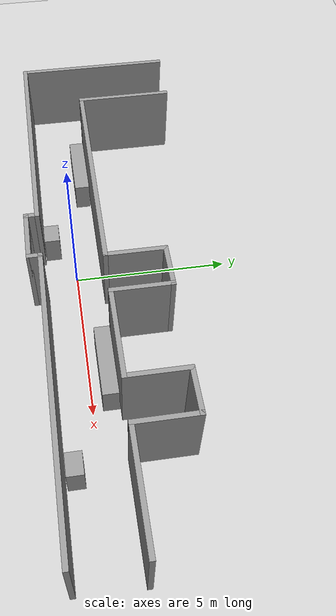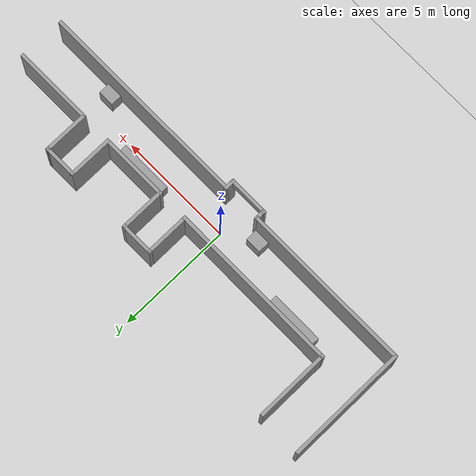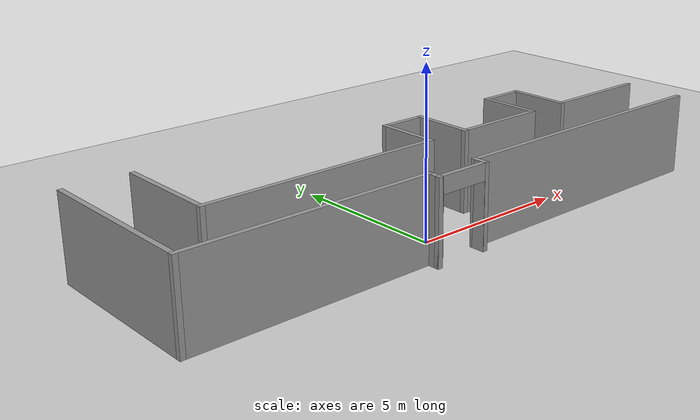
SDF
<sdf version="1.6">
 <world name="default">
  <light name="sun" type="directional">
   <pose>0 0 10 0 -0 0</pose>
   <diffuse>0.8 0.8 0.8 1</diffuse>
   <specular>0.2 0.2 0.2 1</specular>
   <attenuation>
    <range>1000</range>
    <constant>0.9</constant>
    <linear>0.01</linear>
    <quadratic>0.001</quadratic>
   </attenuation>
   <direction>-0.5 0.1 -0.9</direction>
   <spot><inner_angle>0</inner_angle><outer_angle>0</outer_angle><falloff>0</falloff></spot>
  </light>
  <model name="ground_plane">
   <static>1</static>
   <link name="link">
    <collision name="collision">
     <geometry><plane><normal>0 0 1</normal><size>100 100</size></plane></geometry>
     <surface><friction><ode><mu>100</mu><mu2>50</mu2></ode></friction></surface>
    </collision>
    <visual name="visual">
     <cast_shadows>0</cast_shadows>
     <geometry><plane><normal>0 0 1</normal><size>100 100</size></plane></geometry>
     <material>
      <script><uri>file://media/materials/scripts/gazebo.material</uri><name>Gazebo/Grey</name></script>
     </material>
    </visual>
   </link>
  </model>
  <gravity>0 0 -9.8</gravity>
  <magnetic_field>6e-06 2.3e-05 -4.2e-05</magnetic_field>
  <atmosphere type="adiabatic"/>
  <physics type="ode">
   <max_step_size>0.001</max_step_size>
   <real_time_factor>1</real_time_factor>
   <real_time_update_rate>1000</real_time_update_rate>
  </physics>
  <scene><ambient>0.4 0.4 0.4 1</ambient><background>0.7 0.7 0.7 1</background><shadows>1</shadows></scene>
  <spherical_coordinates>
   <surface_model>EARTH_WGS84</surface_model>
   <latitude_deg>0</latitude_deg>
   <longitude_deg>0</longitude_deg>
   <elevation>0</elevation>
   <heading_deg>0</heading_deg>
  </spherical_coordinates>
  <model name="SKKU">
   <pose>0.845 1.325 0 0 -0 0</pose>
   <link name="Wall_16">
    <collision name="Wall_16_Collision">
     <geometry><box><size>2 0.15 2.5</size></box></geometry>
     <pose>0 0 1.25 0 -0 0</pose>
    </collision>
    <visual name="Wall_16_Visual">
     <pose>0 0 1.25 0 -0 0</pose>
     <geometry><box><size>2 0.15 2.5</size></box></geometry>
     <material>
      <script><uri>file://media/materials/scripts/gazebo.material</uri><name>Gazebo/Grey</name></script>
      <ambient>1 1 1 1</ambient>
     </material>
     <meta><layer>0</layer></meta>
    </visual>
    <pose>4.375 0.5 0 0 -0 1.5708</pose>
   </link>
   <link name="Wall_20">
    <collision name="Wall_20_Collision">
     <geometry><box><size>1.5 0.15 2.5</size></box></geometry>
     <pose>0 0 1.25 0 -0 0</pose>
    </collision>
    <visual name="Wall_20_Visual">
     <pose>0 0 1.25 0 -0 0</pose>
     <geometry><box><size>1.5 0.15 2.5</size></box></geometry>
     <material>
      <script><uri>file://media/materials/scripts/gazebo.material</uri><name>Gazebo/Grey</name></script>
      <ambient>1 1 1 1</ambient>
     </material>
     <meta><layer>0</layer></meta>
    </visual>
    <pose>5.05 1.425 0 0 -0 0</pose>
   </link>
   <link name="Wall_21">
    <collision name="Wall_21_Collision">
     <geometry><box><size>2 0.15 2.5</size></box></geometry>
     <pose>0 0 1.25 0 -0 0</pose>
    </collision>
    <visual name="Wall_21_Visual">
     <pose>0 0 1.25 0 -0 0</pose>
     <geometry><box><size>2 0.15 2.5</size></box></geometry>
     <material>
      <script><uri>file://media/materials/scripts/gazebo.material</uri><name>Gazebo/Grey</name></script>
      <ambient>1 1 1 1</ambient>
     </material>
     <meta><layer>0</layer></meta>
    </visual>
    <pose>5.725 0.5 0 0 -0 -1.5708</pose>
   </link>
   <link name="Wall_22">
    <collision name="Wall_22_Collision">
     <geometry><box><size>3.5 0.15 2.5</size></box></geometry>
     <pose>0 0 1.25 0 -0 0</pose>
    </collision>
    <visual name="Wall_22_Visual">
     <pose>0 0 1.25 0 -0 0</pose>
     <geometry><box><size>3.5 0.15 2.5</size></box></geometry>
     <material>
      <script><uri>file://media/materials/scripts/gazebo.material</uri><name>Gazebo/Grey</name></script>
      <ambient>1 1 1 1</ambient>
     </material>
     <meta><layer>0</layer></meta>
    </visual>
    <pose>7.4 -0.425 0 0 -0 0</pose>
   </link>
   <link name="Wall_25">
    <collision name="Wall_25_Collision">
     <geometry><box><size>9.25 0.15 2.5</size></box></geometry>
     <pose>0 0 1.25 0 -0 0</pose>
    </collision>
    <visual name="Wall_25_Visual">
     <pose>0 0 1.25 0 -0 0</pose>
     <geometry><box><size>9.25 0.15 2.5</size></box></geometry>
     <material>
      <script><uri>file://media/materials/scripts/gazebo.material</uri><name>Gazebo/Grey</name></script>
      <ambient>1 1 1 1</ambient>
     </material>
     <meta><layer>0</layer></meta>
    </visual>
    <pose>4.475 -2.375 0 0 -0 0</pose>
   </link>
   <link name="Wall_30">
    <collision name="Wall_30_Collision">
     <geometry><box><size>3 0.15 2.5</size></box></geometry>
     <pose>0 0 1.25 0 -0 0</pose>
    </collision>
    <visual name="Wall_30_Visual">
     <pose>0 0 1.25 0 -0 0</pose>
     <geometry><box><size>3 0.15 2.5</size></box></geometry>
     <material>
      <script><uri>file://media/materials/scripts/gazebo.material</uri><name>Gazebo/Grey</name></script>
      <ambient>1 1 1 1</ambient>
     </material>
     <meta><layer>0</layer></meta>
    </visual>
    <pose>2.95 -0.425 0 0 -0 3.14159</pose>
   </link>
   <link name="Wall_31">
    <collision name="Wall_31_Collision">
     <geometry><box><size>2 0.15 2.5</size></box></geometry>
     <pose>0 0 1.25 0 -0 0</pose>
    </collision>
    <visual name="Wall_31_Visual">
     <pose>0 0 1.25 0 -0 0</pose>
     <geometry><box><size>2 0.15 2.5</size></box></geometry>
     <material>
      <script><uri>file://media/materials/scripts/gazebo.material</uri><name>Gazebo/Grey</name></script>
      <ambient>1 1 1 1</ambient>
     </material>
     <meta><layer>0</layer></meta>
    </visual>
    <pose>1.525 0.5 0 0 -0 1.5708</pose>
   </link>
   <link name="Wall_33">
    <collision name="Wall_33_Collision">
     <geometry><box><size>1.5 0.15 2.5</size></box></geometry>
     <pose>0 0 1.25 0 -0 0</pose>
    </collision>
    <visual name="Wall_33_Visual">
     <pose>0 0 1.25 0 -0 0</pose>
     <geometry><box><size>1.5 0.15 2.5</size></box></geometry>
     <material>
      <script><uri>file://media/materials/scripts/gazebo.material</uri><name>Gazebo/Grey</name></script>
      <ambient>1 1 1 1</ambient>
     </material>
     <meta><layer>0</layer></meta>
    </visual>
    <pose>0.85 1.425 0 0 -0 3.14159</pose>
   </link>
   <link name="Wall_34">
    <collision name="Wall_34_Collision">
     <geometry><box><size>2 0.15 2.5</size></box></geometry>
     <pose>0 0 1.25 0 -0 0</pose>
    </collision>
    <visual name="Wall_34_Visual">
     <pose>0 0 1.25 0 -0 0</pose>
     <geometry><box><size>2 0.15 2.5</size></box></geometry>
     <material>
      <script><uri>file://media/materials/scripts/gazebo.material</uri><name>Gazebo/Grey</name></script>
      <ambient>1 1 1 1</ambient>
     </material>
     <meta><layer>0</layer></meta>
    </visual>
    <pose>0.175 0.5 0 0 -0 -1.5708</pose>
   </link>
   <link name="Wall_47">
    <collision name="Wall_47_Collision">
     <geometry><box><size>0.5 0.15 2.5</size></box></geometry>
     <pose>0 0 1.25 0 -0 0</pose>
    </collision>
    <visual name="Wall_47_Visual">
     <pose>0 0 1.25 0 -0 0</pose>
     <geometry><box><size>0.5 0.15 2.5</size></box></geometry>
     <material>
      <script><uri>file://media/materials/scripts/gazebo.material</uri><name>Gazebo/Grey</name></script>
      <ambient>1 1 1 1</ambient>
     </material>
     <meta><layer>0</layer></meta>
    </visual>
    <pose>-0.075 -2.55 0 0 -0 -1.5708</pose>
   </link>
   <link name="Wall_48">
    <pose>-0.9 -2.725 0 0 -0 3.14159</pose>
    <visual name="Wall_48_Visual_0">
     <pose>-0.82997 0 1.25 0 -0 0</pose>
     <geometry><box><size>0.14006 0.15 2.5</size></box></geometry>
     <material>
      <script><uri>file://media/materials/scripts/gazebo.material</uri><name>Gazebo/Grey</name></script>
      <ambient>1 1 1 1</ambient>
     </material>
     <meta><layer>0</layer></meta>
    </visual>
    <collision name="Wall_48_Collision_0">
     <geometry><box><size>0.14006 0.15 2.5</size></box></geometry>
     <pose>-0.82997 0 1.25 0 -0 0</pose>
    </collision>
    <visual name="Wall_48_Visual_1">
     <pose>0.82003 0 1.25 0 -0 0</pose>
     <geometry><box><size>0.15994 0.15 2.5</size></box></geometry>
     <material>
      <script><uri>file://media/materials/scripts/gazebo.material</uri><name>Gazebo/Grey</name></script>
      <ambient>1 1 1 1</ambient>
     </material>
     <meta><layer>0</layer></meta>
    </visual>
    <collision name="Wall_48_Collision_1">
     <geometry><box><size>0.15994 0.15 2.5</size></box></geometry>
     <pose>0.82003 0 1.25 0 -0 0</pose>
    </collision>
    <visual name="Wall_48_Visual_2">
     <pose>-0.00994 0 2.25 0 -0 0</pose>
     <geometry><box><size>1.5 0.15 0.5</size></box></geometry>
     <material>
      <script><uri>file://media/materials/scripts/gazebo.material</uri><name>Gazebo/Grey</name></script>
      <ambient>1 1 1 1</ambient>
     </material>
     <meta><layer>0</layer></meta>
    </visual>
    <collision name="Wall_48_Collision_2">
     <geometry><box><size>1.5 0.15 0.5</size></box></geometry>
     <pose>-0.00994 0 2.25 0 -0 0</pose>
    </collision>
   </link>
   <link name="Wall_50">
    <collision name="Wall_50_Collision">
     <geometry><box><size>0.5 0.15 2.5</size></box></geometry>
     <pose>0 0 1.25 0 -0 0</pose>
    </collision>
    <visual name="Wall_50_Visual">
     <pose>0 0 1.25 0 -0 0</pose>
     <geometry><box><size>0.5 0.15 2.5</size></box></geometry>
     <material>
      <script><uri>file://media/materials/scripts/gazebo.material</uri><name>Gazebo/Grey</name></script>
      <ambient>1 1 1 1</ambient>
     </material>
     <meta><layer>0</layer></meta>
    </visual>
    <pose>-1.725 -2.55 0 0 -0 1.5708</pose>
   </link>
   <link name="Wall_51">
    <collision name="Wall_51_Collision">
     <geometry><box><size>7.5 0.15 2.5</size></box></geometry>
     <pose>0 0 1.25 0 -0 0</pose>
    </collision>
    <visual name="Wall_51_Visual">
     <pose>0 0 1.25 0 -0 0</pose>
     <geometry><box><size>7.5 0.15 2.5</size></box></geometry>
     <material>
      <script><uri>file://media/materials/scripts/gazebo.material</uri><name>Gazebo/Grey</name></script>
      <ambient>1 1 1 1</ambient>
     </material>
     <meta><layer>0</layer></meta>
    </visual>
    <pose>-5.4 -2.375 0 0 -0 3.14159</pose>
   </link>
   <link name="Wall_55">
    <collision name="Wall_55_Collision">
     <geometry><box><size>5.25 0.15 2.5</size></box></geometry>
     <pose>0 0 1.25 0 -0 0</pose>
    </collision>
    <visual name="Wall_55_Visual">
     <pose>0 0 1.25 0 -0 0</pose>
     <geometry><box><size>5.25 0.15 2.5</size></box></geometry>
     <material>
      <script><uri>file://media/materials/scripts/gazebo.material</uri><name>Gazebo/Grey</name></script>
      <ambient>1 1 1 1</ambient>
     </material>
     <meta><layer>0</layer></meta>
    </visual>
    <pose>-9.075 0.175 0 0 -0 1.5708</pose>
   </link>
   <link name="Wall_58">
    <collision name="Wall_58_Collision">
     <geometry><box><size>7.5 0.15 2.5</size></box></geometry>
     <pose>0 0 1.25 0 -0 0</pose>
    </collision>
    <visual name="Wall_58_Visual">
     <pose>0 0 1.25 0 -0 0</pose>
     <geometry><box><size>7.5 0.15 2.5</size></box></geometry>
     <material>
      <script><uri>file://media/materials/scripts/gazebo.material</uri><name>Gazebo/Grey</name></script>
      <ambient>1 1 1 1</ambient>
     </material>
     <meta><layer>0</layer></meta>
    </visual>
    <pose>-3.5 -0.425 0 0 -0 3.14159</pose>
   </link>
   <link name="Wall_59">
    <collision name="Wall_59_Collision">
     <geometry><box><size>3.25 0.15 2.5</size></box></geometry>
     <pose>0 0 1.25 0 -0 0</pose>
    </collision>
    <visual name="Wall_59_Visual">
     <pose>0 0 1.25 0 -0 0</pose>
     <geometry><box><size>3.25 0.15 2.5</size></box></geometry>
     <material>
      <script><uri>file://media/materials/scripts/gazebo.material</uri><name>Gazebo/Grey</name></script>
      <ambient>1 1 1 1</ambient>
     </material>
     <meta><layer>0</layer></meta>
    </visual>
    <pose>-7.175 1.125 0 0 -0 1.5708</pose>
   </link>
   <static>1</static>
  </model>
  <model name="unit_box_0">
   <pose>3.77394 0.553251 0.5 0 -0 0</pose>
   <link name="link">
    <inertial>
     <mass>1</mass>
     <inertia>
      <ixx>0.166667</ixx>
      <ixy>0</ixy>
      <ixz>0</ixz>
      <iyy>0.166667</iyy>
      <iyz>0</iyz>
      <izz>0.166667</izz>
     </inertia>
    </inertial>
    <collision name="collision"><geometry><box><size>2.3112 0.492478 1</size></box></geometry></collision>
    <visual name="visual">
     <geometry><box><size>2.3112 0.492478 1</size></box></geometry>
     <material>
      <script><name>Gazebo/Grey</name><uri>file://media/materials/scripts/gazebo.material</uri></script>
     </material>
    </visual>
   </link>
  </model>
  <model name="unit_box_clone">
   <pose>6.83884 -0.677768 0.5 0 -0 0</pose>
   <link name="link">
    <inertial>
     <mass>1</mass>
     <inertia>
      <ixx>0.166667</ixx>
      <ixy>0</ixy>
      <ixz>0</ixz>
      <iyy>0.166667</iyy>
      <iyz>0</iyz>
      <izz>0.166667</izz>
     </inertia>
    </inertial>
    <collision name="collision"><geometry><box><size>0.689157 0.501153 1</size></box></geometry></collision>
    <visual name="visual">
     <geometry><box><size>0.689157 0.501153 1</size></box></geometry>
     <material>
      <script><name>Gazebo/Grey</name><uri>file://media/materials/scripts/gazebo.material</uri></script>
     </material>
    </visual>
   </link>
  </model>
  <model name="unit_box_clone_clone">
   <pose>-1.33636 -0.690941 0.5 0 -0 0</pose>
   <link name="link">
    <inertial>
     <mass>1</mass>
     <inertia>
      <ixx>0.166667</ixx>
      <ixy>0</ixy>
      <ixz>0</ixz>
      <iyy>0.166667</iyy>
      <iyz>0</iyz>
      <izz>0.166667</izz>
     </inertia>
    </inertial>
    <collision name="collision"><geometry><box><size>0.689157 0.501153 1</size></box></geometry></collision>
    <visual name="visual">
     <geometry><box><size>0.689157 0.501153 1</size></box></geometry>
     <material>
      <script><name>Gazebo/Grey</name><uri>file://media/materials/scripts/gazebo.material</uri></script>
     </material>
    </visual>
   </link>
  </model>
  <model name="unit_box_0_clone">
   <pose>-4.49965 0.549531 0.5 0 -0 0</pose>
   <link name="link">
    <inertial>
     <mass>1</mass>
     <inertia>
      <ixx>0.166667</ixx>
      <ixy>0</ixy>
      <ixz>0</ixz>
      <iyy>0.166667</iyy>
      <iyz>0</iyz>
      <izz>0.166667</izz>
     </inertia>
    </inertial>
    <collision name="collision"><geometry><box><size>2.3112 0.492478 1</size></box></geometry></collision>
    <visual name="visual">
     <geometry><box><size>2.3112 0.492478 1</size></box></geometry>
     <material>
      <script><name>Gazebo/Grey</name><uri>file://media/materials/scripts/gazebo.material</uri></script>
     </material>
    </visual>
   </link>
  </model>
 </world>
</sdf>
